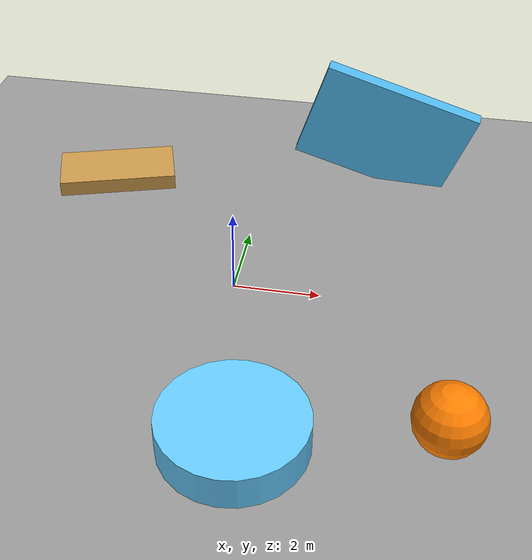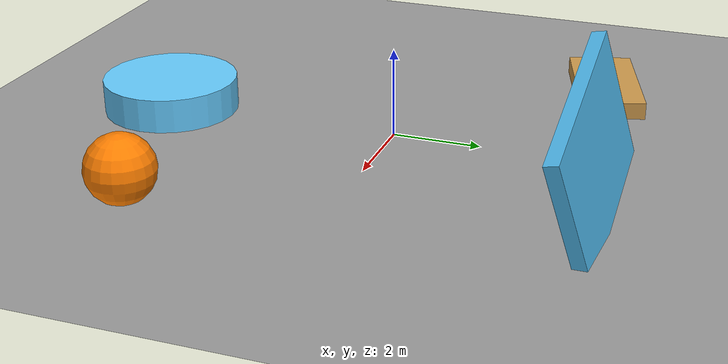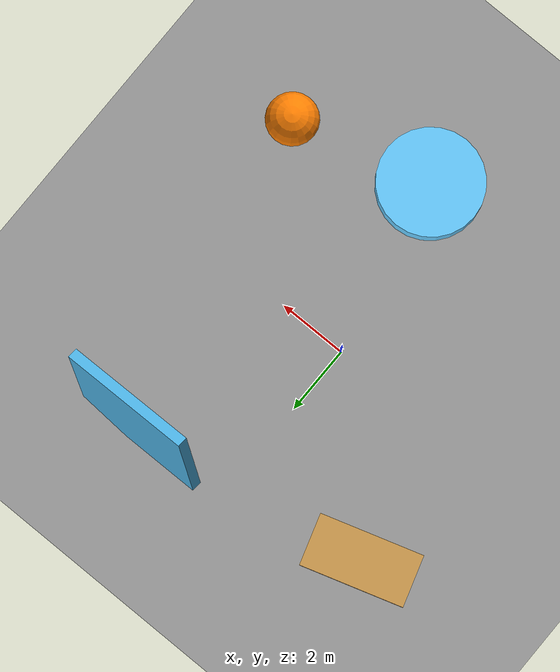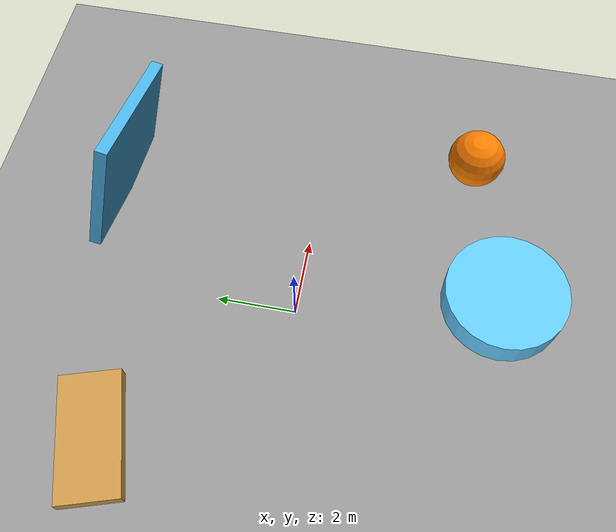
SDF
<?xml version="1.0" ?>
<sdf version="1.8">
  <world name="custom_world">
    <!-- Add a sun for lighting -->
    <light name="sun" type="directional">
      <cast_shadows>true</cast_shadows>
      <pose>0 0 10 0 0 0</pose>
      <diffuse>1.0 0.9 0.8 1</diffuse>
      <specular>0.2 0.2 0.2 1</specular>
      <direction>-0.7 0.3 -0.6</direction>
    </light>

    <!-- Add ground plane -->
    <model name="ground_plane">
      <static>true</static>
      <link name="link">
        <collision name="collision">
          <geometry>
            <plane>
              <normal>0 0 1</normal>
              <size>200 200</size>
            </plane>
          </geometry>
        </collision>
        <visual name="visual">
          <geometry>
            <plane>
              <normal>0 0 1</normal>
              <size>200 200</size>
            </plane>
          </geometry>
          <material>
            <ambient>0.6 0.6 0.6 1</ambient>
            <diffuse>0.6 0.6 0.6 1</diffuse>
          </material>
        </visual>
      </link>
    </model>

    <!-- Add sphere obstacle -->
    <model name="sphere1">
      <static>true</static>
      <pose>5 -4 0.75 0 0 0</pose>
      <link name="link">
        <collision name="collision">
          <geometry>
            <sphere>
              <radius>0.75</radius>
            </sphere>
          </geometry>
        </collision>
        <visual name="visual">
          <geometry>
            <sphere>
              <radius>0.75</radius>
            </sphere>
          </geometry>
          <material>
            <ambient>1 0.5 0 1</ambient>
            <diffuse>1 0.5 0 1</diffuse>
          </material>
        </visual>
      </link>
    </model>

    <!-- Add ramp obstacle -->
    <model name="ramp">
      <static>true</static>
      <pose>-4 4 0 0 0 0.3</pose>
      <link name="link">
        <collision name="collision">
          <geometry>
            <box>
              <size>3 1.5 0.75</size>
            </box>
          </geometry>
        </collision>
        <visual name="visual">
          <geometry>
            <box>
              <size>3 1.5 0.75</size>
            </box>
          </geometry>
          <material>
            <ambient>0.8 0.6 0.3 1</ambient>
            <diffuse>0.8 0.6 0.3 1</diffuse>
          </material>
        </visual>
      </link>
    </model>

    <!-- Add hollow cylinder obstacle -->
    <model name="hollow_cylinder">
      <static>true</static>
      <pose>1 -5 0.75 0 0 0</pose>
      <link name="link">
        <collision name="collision">
          <geometry>
            <cylinder>
              <radius>1.5</radius>
              <length>0.75</length>
            </cylinder>
          </geometry>
        </collision>
        <visual name="visual">
          <geometry>
            <cylinder>
              <radius>1.5</radius>
              <length>0.75</length>
            </cylinder>
          </geometry>
          <material>
            <ambient>0.4 0.8 1 1</ambient>
            <diffuse>0.4 0.8 1 1</diffuse>
          </material>
        </visual>
      </link>
    </model>

    <!-- Add tilted wall obstacle -->
    <model name="tilted_wall">
      <static>true</static>
      <pose>3 5 1.5 0.2 0.3 0</pose>
      <link name="link">
        <collision name="collision">
          <geometry>
            <box>
              <size>4 0.3 3</size>
            </box>
          </geometry>
        </collision>
        <visual name="visual">
          <geometry>
            <box>
              <size>4 0.3 3</size>
            </box>
          </geometry>
          <material>
            <ambient>0.3 0.7 0.9 1</ambient>
            <diffuse>0.3 0.7 0.9 1</diffuse>
          </material>
        </visual>
      </link>
    </model>

    <!-- Physics settings -->
    <physics type="ode">
      <max_step_size>0.002</max_step_size>
      <real_time_factor>1.0</real_time_factor>
      <real_time_update_rate>500.0</real_time_update_rate>
      <gravity>0 0 -9.8</gravity>
    </physics>
  </world>
</sdf>
